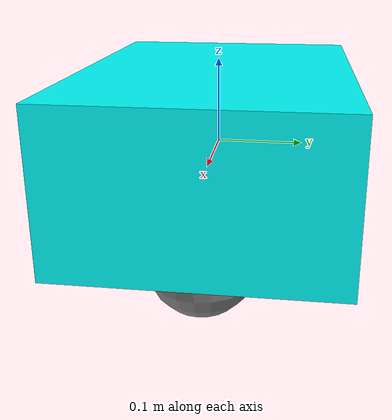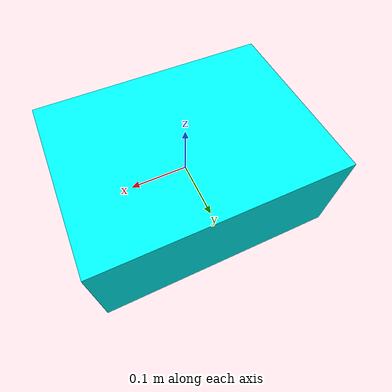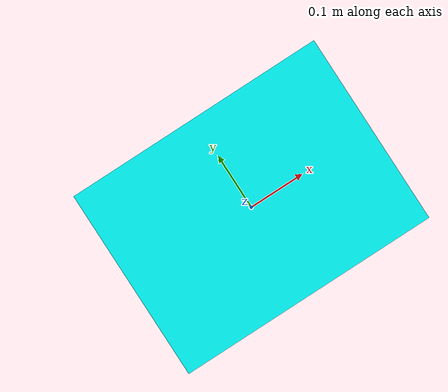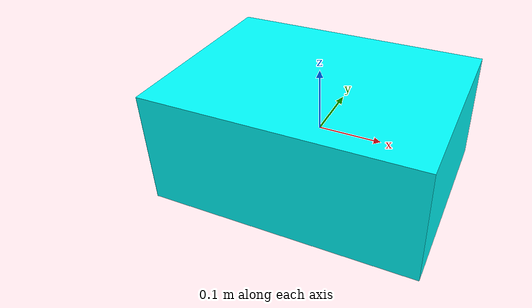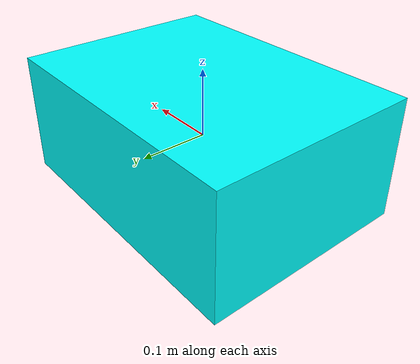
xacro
<?xml version="1.0"?>
<robot xmlns:xacro="http://www.ros.org/wiki/xacro" >

    <!-- Including files -->

    <!-- Include inertial macros -->
    <xacro:include filename="inertial_macros.xacro"/>

    <!-- Visual -->

    <!-- Include rviz material colors -->
    <xacro:include filename="materials.xacro"/>

    <!-- Define robot constants -->

    <!-- Robot base constants -->
    <xacro:property name="base_width" value="0.31"/>
    <xacro:property name="base_length" value="0.42"/>
    <xacro:property name="base_height" value="0.18"/>
    <!-- Robot wheels constants -->
    <xacro:property name="wheel_radius" value="0.10"/>
    <xacro:property name="wheel_width" value="0.04"/>
    <xacro:property name="wheel_ygap" value="0.025"/>
    <xacro:property name="wheel_zoff" value="0.05"/>
    <xacro:property name="wheel_xoff" value="0.12"/>
    <!-- Castor wheels constats -->
    <xacro:property name="caster_xoff" value="0.14"/>

    <!-- Robot Base -->
    <link name="base_link">
        <visual>
        <geometry>
            <box size="${base_length} ${base_width} ${base_height}"/>
        </geometry>
        <material name="cyan"/>
        </visual>
        <collision>
            <geometry>
                <box size="${base_length} ${base_width} ${base_height}"/>
            </geometry>
        </collision>
        <xacro:box_inertia mass="15" width="${base_width}" length="${base_length}" height="${base_height}"/>
    </link>

    <!-- Robot Footprint -->
    <link name="base_footprint"/>

    <joint name="base_joint" type="fixed">
        <parent link="base_link"/>
        <child link="base_footprint"/>
        <origin xyz="0.0 0.0 ${-(wheel_radius+wheel_zoff)}" rpy="0 0 0"/>
    </joint>

    <!-- Caster Wheel -->
    <link name="front_caster">
        <visual>
        <geometry>
            <sphere radius="${(wheel_radius+wheel_zoff-(base_height/2))}"/>
        </geometry>
        <material name="grey"/>
        </visual>
        <collision>
            <origin xyz="0 0 0" rpy="0 0 0"/>
            <geometry>
                <sphere radius="${(wheel_radius+wheel_zoff-(base_height/2))}"/>
            </geometry>
        </collision>
        <xacro:sphere_inertia mass="0.5" radius="${(wheel_radius+wheel_zoff-(base_height/2))}"/>
    </link>

    <joint name="caster_joint" type="fixed">
        <parent link="base_link"/>
        <child link="front_caster"/>
        <origin xyz="${caster_xoff} 0.0 ${-(base_height/2)}" rpy="0 0 0"/>
    </joint>

</robot>

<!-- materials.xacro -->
<robot xmlns:xacro="http://www.ros.org/wiki/xacro" name="questbot_2wd">

  <!-- Rviz Colours -->

  <material name="black">
    <color rgba="0 0 0 1"/>
  </material>

  <material name="white">
    <color rgba="1 1 1 1"/>
  </material>

  <material name="blue">
    <color rgba="0.0 0.0 0.8 1"/>
  </material>

  <material name="lightblue">
    <color rgba="0.6 0.8 1 0.9"/>
  </material>

  <material name="green">
    <color rgba="0.0 0.8 0.0 1"/>
  </material>

  <material name="grey">
    <color rgba="0.5 0.5 0.5 1.0"/>
  </material>

  <material name="orange">
    <color rgba="1.0 0.4235 0.0392 1.0"/>
  </material>

  <material name="brown">
    <color rgba="0.8706 0.8118 0.7647 1.0"/>
  </material>

  <material name="red">
    <color rgba="0.8 0.0 0.0 1.0"/>
  </material>

  <material name="cyan">
    <color rgba="0 1.0 1.0 1.0"/>
  </material>

</robot>
